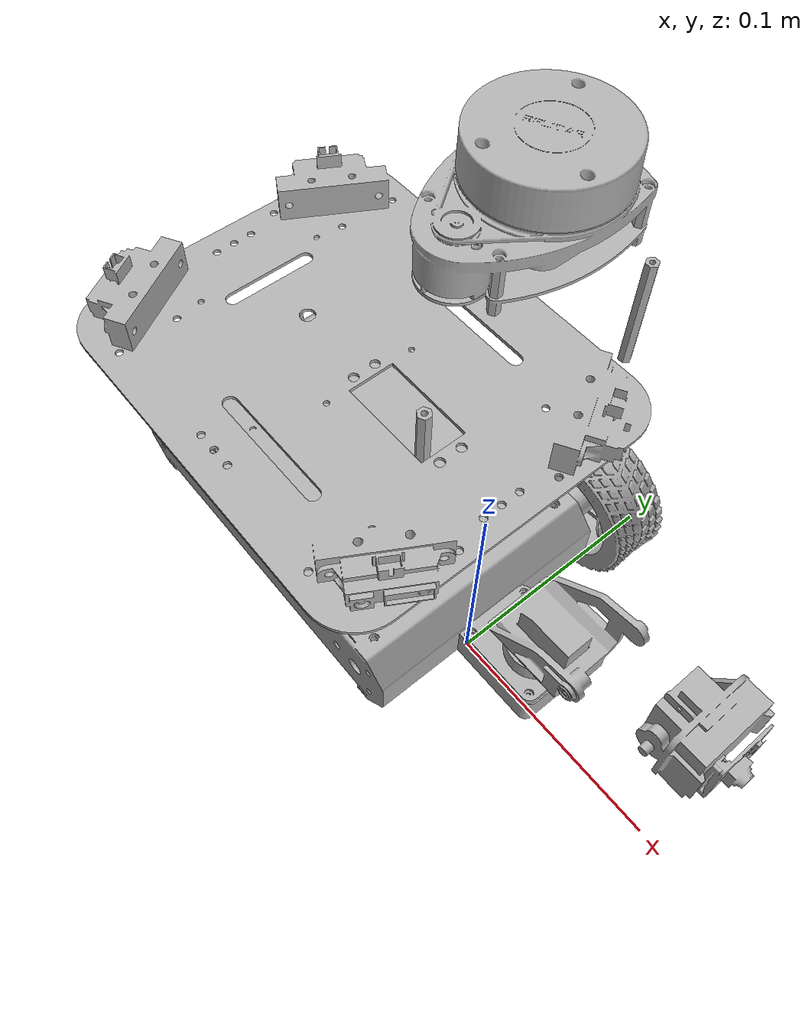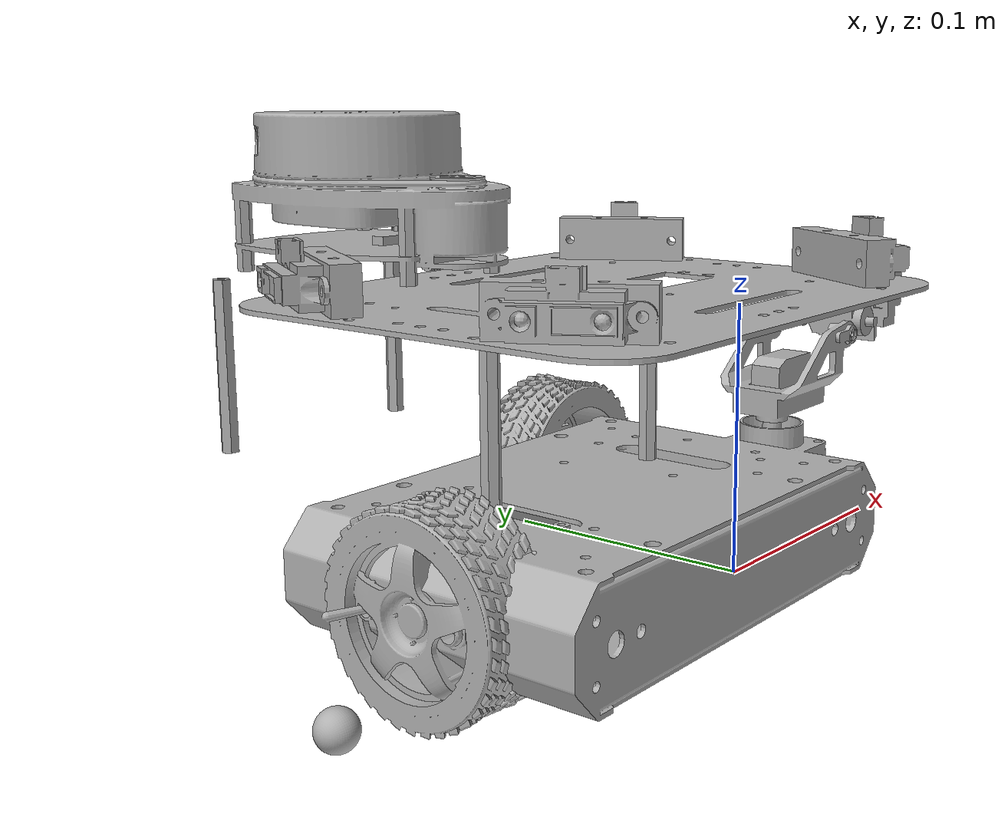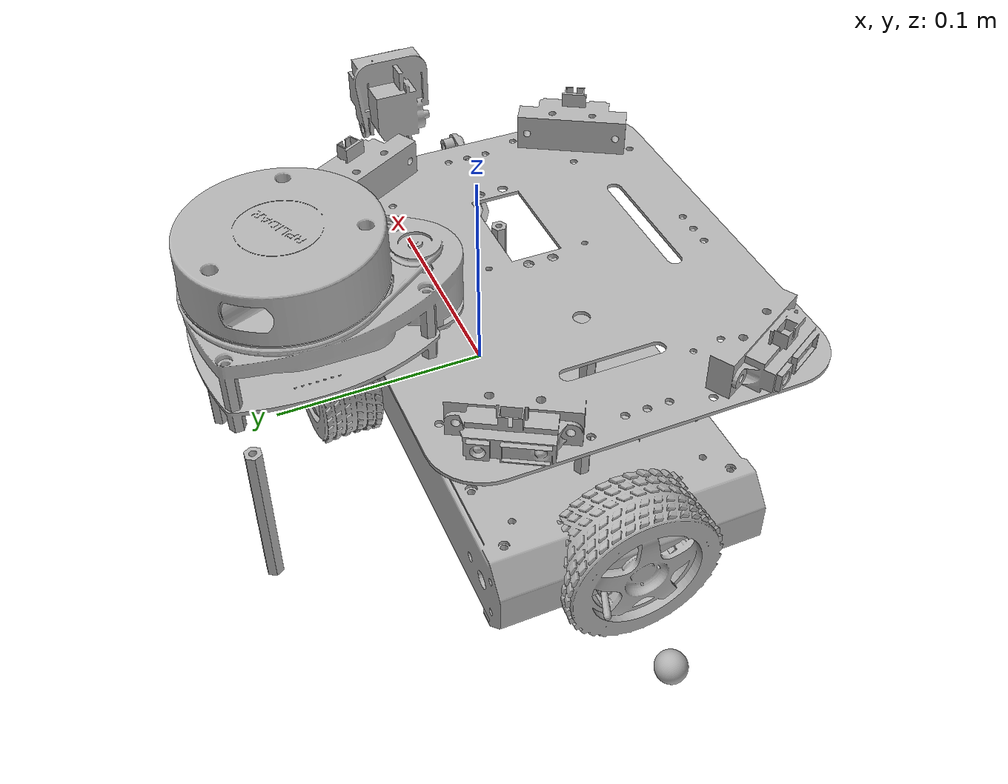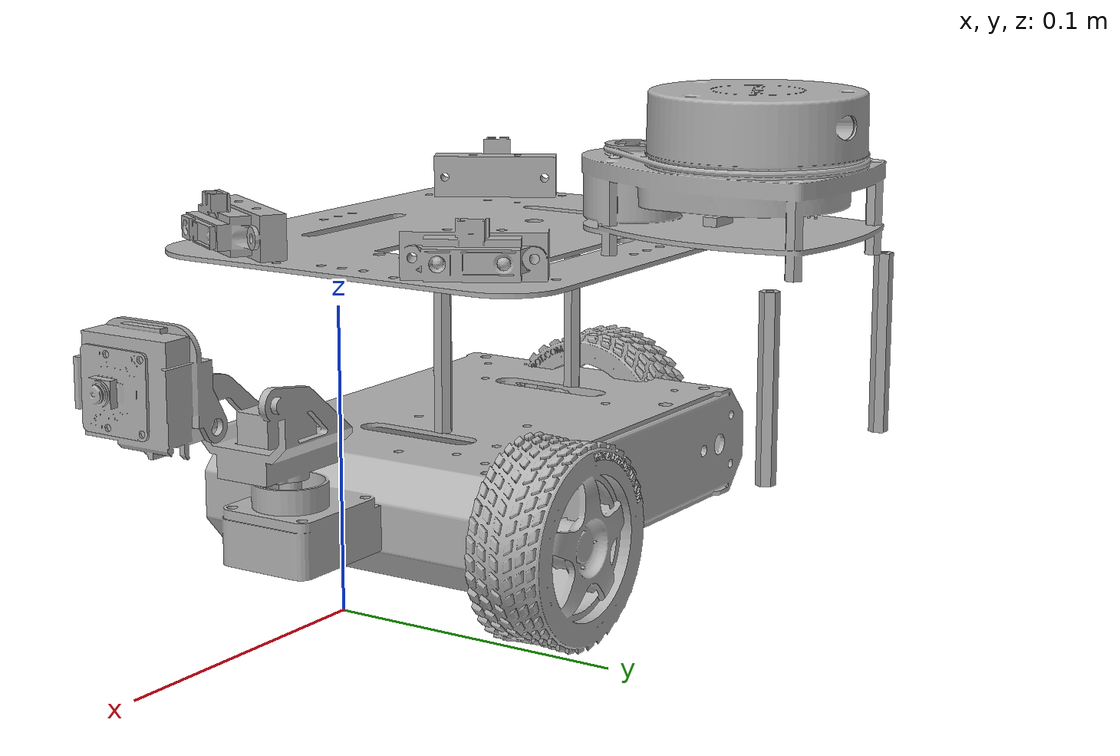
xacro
<?xml version="1.0" ?>
<robot name="PRM_components_urdf" xmlns:xacro="http://www.ros.org/wiki/xacro">

<xacro:include filename="$(find PRM_components_urdf_description)/urdf/materials.xacro" />
<xacro:include filename="$(find PRM_components_urdf_description)/urdf/PRM_components_urdf.trans" />
<xacro:include filename="$(find PRM_components_urdf_description)/urdf/PRM_components_urdf.gazebo" />
<link name="base_link">
  <inertial>
    <origin rpy="0 0 0" xyz="-0.05310169706081706 0.0034414832617332054 0.032112026005096383"/>
    <mass value="0.27584583240478544"/>
    <inertia ixx="0.000392" ixy="1e-06" ixz="-1.1e-05" iyy="0.001046" iyz="-0.0" izz="0.001324"/>
  </inertial>
  <visual>
    <origin rpy="0 0 0" xyz="0 0 0"/>
    <geometry>
      <mesh filename="package://PRM_components_urdf_description/meshes/base_link.stl" scale="0.001 0.001 0.001"/>
    </geometry>
    <material name="silver"/>
  </visual>
  <collision>
    <origin rpy="0 0 0" xyz="0 0 0"/>
    <geometry>
      <mesh filename="package://PRM_components_urdf_description/meshes/base_link.stl" scale="0.001 0.001 0.001"/>
    </geometry>
  </collision>
</link>

<link name="bille_porteuse_1">
  <inertial>
    <origin rpy="0 0 0" xyz="1.9898465511425378e-07 2.0107467493986342e-07 -5.026749273773223e-09"/>
    <mass value="0.008419367021437509"/>
    <inertia ixx="0.0" ixy="0.0" ixz="0.0" iyy="0.0" iyz="-0.0" izz="0.0"/>
  </inertial>
  <visual>
    <origin rpy="0 0 0" xyz="0.146845 -0.003419 -0.005278"/>
    <geometry>
      <mesh filename="package://PRM_components_urdf_description/meshes/bille_porteuse_1.stl" scale="0.001 0.001 0.001"/>
    </geometry>
    <material name="silver"/>
  </visual>
  <collision>
    <origin rpy="0 0 0" xyz="0.146845 -0.003419 -0.005278"/>
    <geometry>
      <mesh filename="package://PRM_components_urdf_description/meshes/bille_porteuse_1.stl" scale="0.001 0.001 0.001"/>
    </geometry>
  </collision>
</link>

<link name="left_wheel_1">
  <inertial>
    <origin rpy="0 0 0" xyz="-5.508030874472672e-06 0.01684892913146528 7.513062201813803e-06"/>
    <mass value="0.05572555972770472"/>
    <inertia ixx="1.9e-05" ixy="0.0" ixz="0.0" iyy="3e-05" iyz="-0.0" izz="1.9e-05"/>
  </inertial>
  <visual>
    <origin rpy="0 0 0" xyz="0.010889 -0.058419 -0.032408"/>
    <geometry>
      <mesh filename="package://PRM_components_urdf_description/meshes/left_wheel_1.stl" scale="0.001 0.001 0.001"/>
    </geometry>
    <material name="silver"/>
  </visual>
  <collision>
    <origin rpy="0 0 0" xyz="0.010889 -0.058419 -0.032408"/>
    <geometry>
      <mesh filename="package://PRM_components_urdf_description/meshes/left_wheel_1.stl" scale="0.001 0.001 0.001"/>
    </geometry>
  </collision>
</link>

<link name="right_wheel_3">
  <inertial>
    <origin rpy="0 0 0" xyz="6.825622156370059e-06 -0.0168397715083117 5.53835148414672e-06"/>
    <mass value="0.055725588971055603"/>
    <inertia ixx="1.9e-05" ixy="-0.0" ixz="-0.0" iyy="3e-05" iyz="-0.0" izz="1.9e-05"/>
  </inertial>
  <visual>
    <origin rpy="0 0 0" xyz="0.010889 0.051581 -0.032408"/>
    <geometry>
      <mesh filename="package://PRM_components_urdf_description/meshes/right_wheel_3.stl" scale="0.001 0.001 0.001"/>
    </geometry>
    <material name="silver"/>
  </visual>
  <collision>
    <origin rpy="0 0 0" xyz="0.010889 0.051581 -0.032408"/>
    <geometry>
      <mesh filename="package://PRM_components_urdf_description/meshes/right_wheel_3.stl" scale="0.001 0.001 0.001"/>
    </geometry>
  </collision>
</link>

<link name="lien_plaque_sup_1">
  <inertial>
    <origin rpy="0 0 0" xyz="-0.06000033725581454 -0.03999979892532527 0.030000328306584424"/>
    <mass value="0.016233798346575297"/>
    <inertia ixx="3.1e-05" ixy="0.0" ixz="0.0" iyy="6.3e-05" iyz="0.0" izz="8.4e-05"/>
  </inertial>
  <visual>
    <origin rpy="0 0 0" xyz="0.017389 -0.043419 -0.051408"/>
    <geometry>
      <mesh filename="package://PRM_components_urdf_description/meshes/lien_plaque_sup_1.stl" scale="0.001 0.001 0.001"/>
    </geometry>
    <material name="silver"/>
  </visual>
  <collision>
    <origin rpy="0 0 0" xyz="0.017389 -0.043419 -0.051408"/>
    <geometry>
      <mesh filename="package://PRM_components_urdf_description/meshes/lien_plaque_sup_1.stl" scale="0.001 0.001 0.001"/>
    </geometry>
  </collision>
</link>

<link name="plaque_sup_1">
  <inertial>
    <origin rpy="0 0 0" xyz="-0.06078580998917531 -0.03999979892532401 0.0007503283065849048"/>
    <mass value="0.09905330487184344"/>
    <inertia ixx="0.000189" ixy="0.0" ixz="0.0" iyy="0.000271" iyz="-0.0" izz="0.000459"/>
  </inertial>
  <visual>
    <origin rpy="0 0 0" xyz="0.017389 -0.043419 -0.111408"/>
    <geometry>
      <mesh filename="package://PRM_components_urdf_description/meshes/plaque_sup_1.stl" scale="0.001 0.001 0.001"/>
    </geometry>
    <material name="silver"/>
  </visual>
  <collision>
    <origin rpy="0 0 0" xyz="0.017389 -0.043419 -0.111408"/>
    <geometry>
      <mesh filename="package://PRM_components_urdf_description/meshes/plaque_sup_1.stl" scale="0.001 0.001 0.001"/>
    </geometry>
  </collision>
</link>

<link name="laser_1">
  <inertial>
    <origin rpy="0 0 0" xyz="0.040061307840170784 0.027457336130652665 0.0247276910229174"/>
    <mass value="0.07305683031313406"/>
    <inertia ixx="3.2e-05" ixy="-1e-06" ixz="7e-06" iyy="6.2e-05" iyz="0.0" izz="7.2e-05"/>
  </inertial>
  <visual>
    <origin rpy="0 0 0" xyz="0.138934 0.024581 -0.112908"/>
    <geometry>
      <mesh filename="package://PRM_components_urdf_description/meshes/laser_1.stl" scale="0.001 0.001 0.001"/>
    </geometry>
    <material name="silver"/>
  </visual>
  <collision>
    <origin rpy="0 0 0" xyz="0.138934 0.024581 -0.112908"/>
    <geometry>
      <mesh filename="package://PRM_components_urdf_description/meshes/laser_1.stl" scale="0.001 0.001 0.001"/>
    </geometry>
  </collision>
</link>

<link name="tilt_1">
  <inertial>
    <origin rpy="0 0 0" xyz="0.003738616936006807 0.012530651696176127 0.008107618754683021"/>
    <mass value="0.0837710951291597"/>
    <inertia ixx="1.2e-05" ixy="0.0" ixz="-1e-06" iyy="9e-06" iyz="-0.0" izz="9e-06"/>
  </inertial>
  <visual>
    <origin rpy="0 0 0" xyz="-0.057561 0.006184 -0.082423"/>
    <geometry>
      <mesh filename="package://PRM_components_urdf_description/meshes/tilt_1.stl" scale="0.001 0.001 0.001"/>
    </geometry>
    <material name="silver"/>
  </visual>
  <collision>
    <origin rpy="0 0 0" xyz="-0.057561 0.006184 -0.082423"/>
    <geometry>
      <mesh filename="package://PRM_components_urdf_description/meshes/tilt_1.stl" scale="0.001 0.001 0.001"/>
    </geometry>
  </collision>
</link>

<link name="camera_1">
  <inertial>
    <origin rpy="0 0 0" xyz="0.0006061219360854186 -0.0027796194139754413 3.853172479532929e-05"/>
    <mass value="0.0010901216866178827"/>
    <inertia ixx="0.0" ixy="-0.0" ixz="0.0" iyy="0.0" iyz="-0.0" izz="0.0"/>
  </inertial>
  <visual>
    <origin rpy="0 0 0" xyz="-0.078792 -0.005812 -0.094501"/>
    <geometry>
      <mesh filename="package://PRM_components_urdf_description/meshes/camera_1.stl" scale="0.001 0.001 0.001"/>
    </geometry>
    <material name="silver"/>
  </visual>
  <collision>
    <origin rpy="0 0 0" xyz="-0.078792 -0.005812 -0.094501"/>
    <geometry>
      <mesh filename="package://PRM_components_urdf_description/meshes/camera_1.stl" scale="0.001 0.001 0.001"/>
    </geometry>
  </collision>
</link>

<link name="pan_1">
  <inertial>
    <origin rpy="0 0 0" xyz="0.006970821823375661 -0.000197811890040082 0.01387484558911331"/>
    <mass value="0.10221097927434729"/>
    <inertia ixx="1.4e-05" ixy="0.0" ixz="-3e-06" iyy="1.7e-05" iyz="0.0" izz="1.9e-05"/>
  </inertial>
  <visual>
    <origin rpy="0 0 0" xyz="-0.030411 -0.003402 -0.051732"/>
    <geometry>
      <mesh filename="package://PRM_components_urdf_description/meshes/pan_1.stl" scale="0.001 0.001 0.001"/>
    </geometry>
    <material name="silver"/>
  </visual>
  <collision>
    <origin rpy="0 0 0" xyz="-0.030411 -0.003402 -0.051732"/>
    <geometry>
      <mesh filename="package://PRM_components_urdf_description/meshes/pan_1.stl" scale="0.001 0.001 0.001"/>
    </geometry>
  </collision>
</link>

<joint name="caster" type="Ball">
  <origin rpy="0 0 0" xyz="-0.146845 0.003419 0.005278"/>
  <parent link="base_link"/>
  <child link="bille_porteuse_1"/>
</joint>

<joint name="rev_left" type="continuous">
  <origin rpy="0 0 0" xyz="-0.010889 0.058419 0.032408"/>
  <parent link="base_link"/>
  <child link="left_wheel_1"/>
  <axis xyz="0.0 0.01 -0.0"/>
</joint>

<joint name="rev_right" type="continuous">
  <origin rpy="0 0 0" xyz="-0.010889 -0.051581 0.032408"/>
  <parent link="base_link"/>
  <child link="right_wheel_3"/>
  <axis xyz="-0.0 -0.01 0.0"/>
</joint>

<joint name="rigid_plaque_inf" type="fixed">
  <origin rpy="0 0 0" xyz="-0.017389 0.043419 0.051408"/>
  <parent link="base_link"/>
  <child link="lien_plaque_sup_1"/>
</joint>

<joint name="rigid_plaque_sup" type="fixed">
  <origin rpy="0 0 0" xyz="0.0 0.0 0.06"/>
  <parent link="lien_plaque_sup_1"/>
  <child link="plaque_sup_1"/>
</joint>

<joint name="rplidar_joint" type="fixed">
  <origin rpy="0 0 0" xyz="-0.121545 -0.068 0.0015"/>
  <parent link="plaque_sup_1"/>
  <child link="laser_1"/>
</joint>

<joint name="tilt_joint" type="revolute">
  <origin rpy="0 0 0" xyz="0.02715 -0.009586 0.030691"/>
  <parent link="pan_1"/>
  <child link="tilt_1"/>
  <axis xyz="5.3e-05 -0.01 -9e-06"/>
  <limit effort="100" lower="-1.434661" upper="1.434661" velocity="100"/>
</joint>

<joint name="rigid_camera" type="fixed">
  <origin rpy="0 0 0" xyz="0.021231 0.011996 0.012078"/>
  <parent link="tilt_1"/>
  <child link="camera_1"/>
</joint>

<joint name="pan_joint" type="revolute">
  <origin rpy="0 0 0" xyz="0.030411 0.003402 0.051732"/>
  <parent link="base_link"/>
  <child link="pan_1"/>
  <axis xyz="0.0 9e-06 -0.01"/>
  <limit effort="100" lower="-1.570796" upper="1.570796" velocity="100"/>
</joint>

</robot>

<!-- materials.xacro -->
<robot name="PRM_components_urdf" xmlns:xacro="http://www.ros.org/wiki/xacro" >

<material name="silver">
  <color rgba="0.700 0.700 0.700 1.000"/>
</material>

</robot>

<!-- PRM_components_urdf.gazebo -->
<robot name="PRM_components_urdf" xmlns:xacro="http://www.ros.org/wiki/xacro" >

<xacro:property name="body_color" value="Gazebo/Silver" />

<gazebo>
  <plugin filename="libgazebo_ros_control.so" name="control"/>
</gazebo>
<gazebo reference="base_link">
  <material>${body_color}</material>
  <mu1>0.2</mu1>
  <mu2>0.2</mu2>
  <selfCollide>true</selfCollide>
  <gravity>true</gravity>
</gazebo>

<gazebo reference="left_wheel_1">
  <material>${body_color}</material>
  <mu1>0.2</mu1>
  <mu2>0.2</mu2>
  <selfCollide>true</selfCollide>
</gazebo>

<gazebo reference="right_wheel_3">
  <material>${body_color}</material>
  <mu1>0.2</mu1>
  <mu2>0.2</mu2>
  <selfCollide>true</selfCollide>
</gazebo>

<gazebo reference="lien_plaque_sup_1">
  <material>${body_color}</material>
  <mu1>0.2</mu1>
  <mu2>0.2</mu2>
  <selfCollide>true</selfCollide>
</gazebo>

<gazebo reference="plaque_sup_1">
  <material>${body_color}</material>
  <mu1>0.2</mu1>
  <mu2>0.2</mu2>
  <selfCollide>true</selfCollide>
</gazebo>

<gazebo reference="laser_1">
  <material>${body_color}</material>
  <mu1>0.2</mu1>
  <mu2>0.2</mu2>
  <selfCollide>true</selfCollide>
</gazebo>

<gazebo reference="tilt_1">
  <material>${body_color}</material>
  <mu1>0.2</mu1>
  <mu2>0.2</mu2>
  <selfCollide>true</selfCollide>
</gazebo>

<gazebo reference="camera_1">
  <material>${body_color}</material>
  <mu1>0.2</mu1>
  <mu2>0.2</mu2>
  <selfCollide>true</selfCollide>
</gazebo>

<gazebo reference="pan_1">
  <material>${body_color}</material>
  <mu1>0.2</mu1>
  <mu2>0.2</mu2>
  <selfCollide>true</selfCollide>
</gazebo>

<gazebo reference="roue_folle_1">
  <material>${body_color}</material>
  <mu1>0.2</mu1>
  <mu2>0.2</mu2>
  <selfCollide>true</selfCollide>
</gazebo>

<gazebo reference="bille_porteuse_1">
  <material>${body_color}</material>
  <mu1>0.2</mu1>
  <mu2>0.2</mu2>
  <selfCollide>true</selfCollide>
</gazebo>

</robot>
